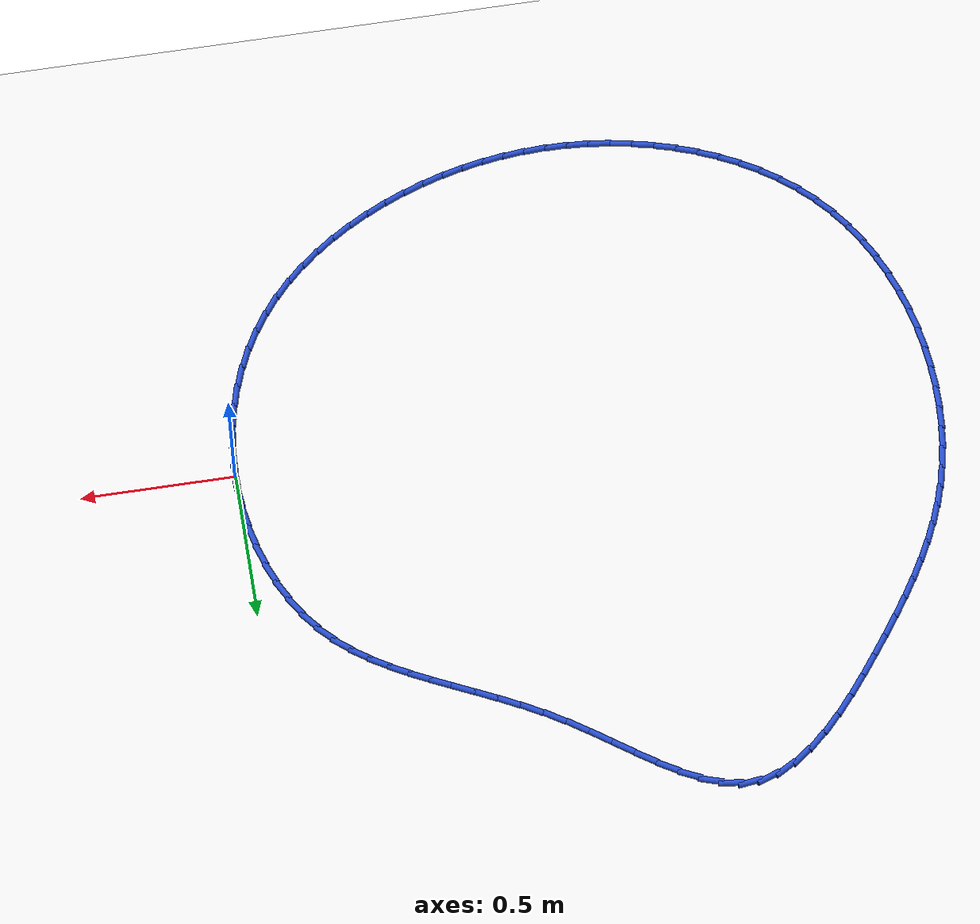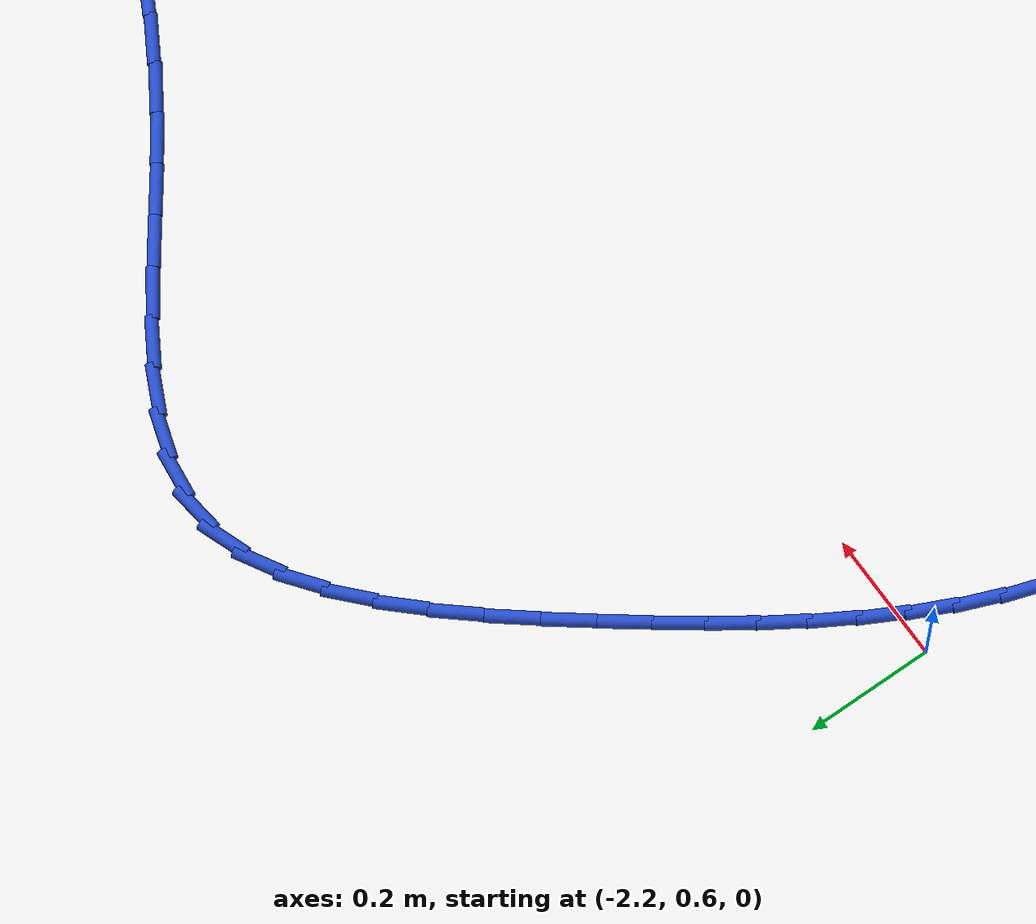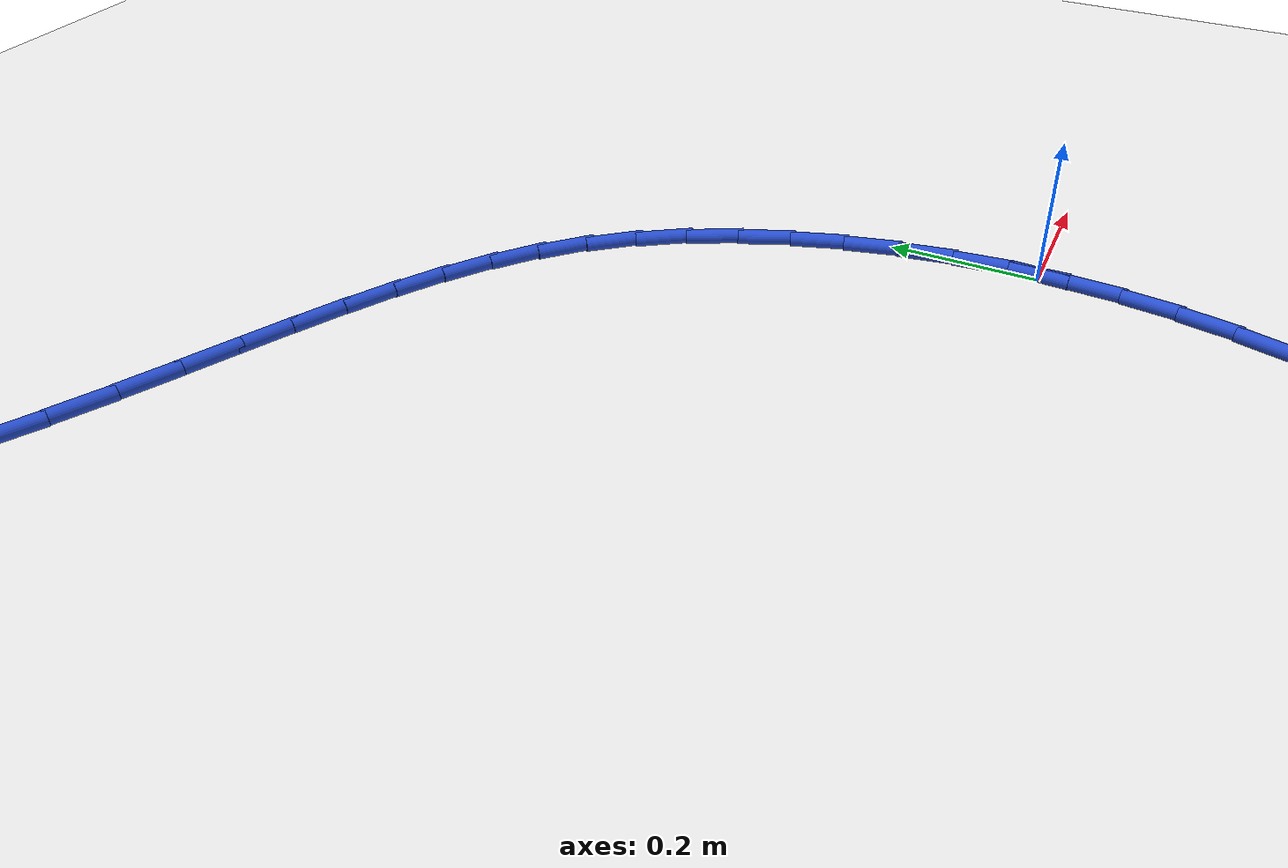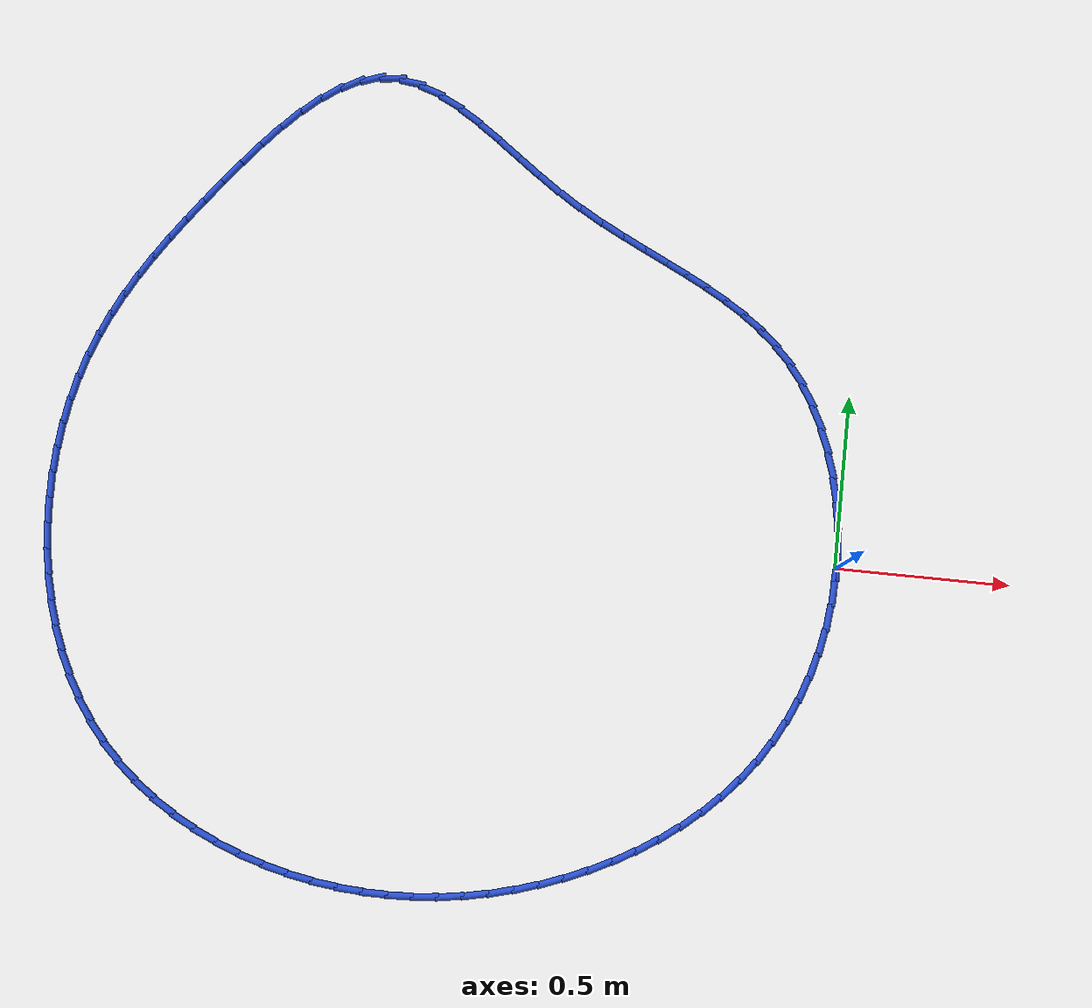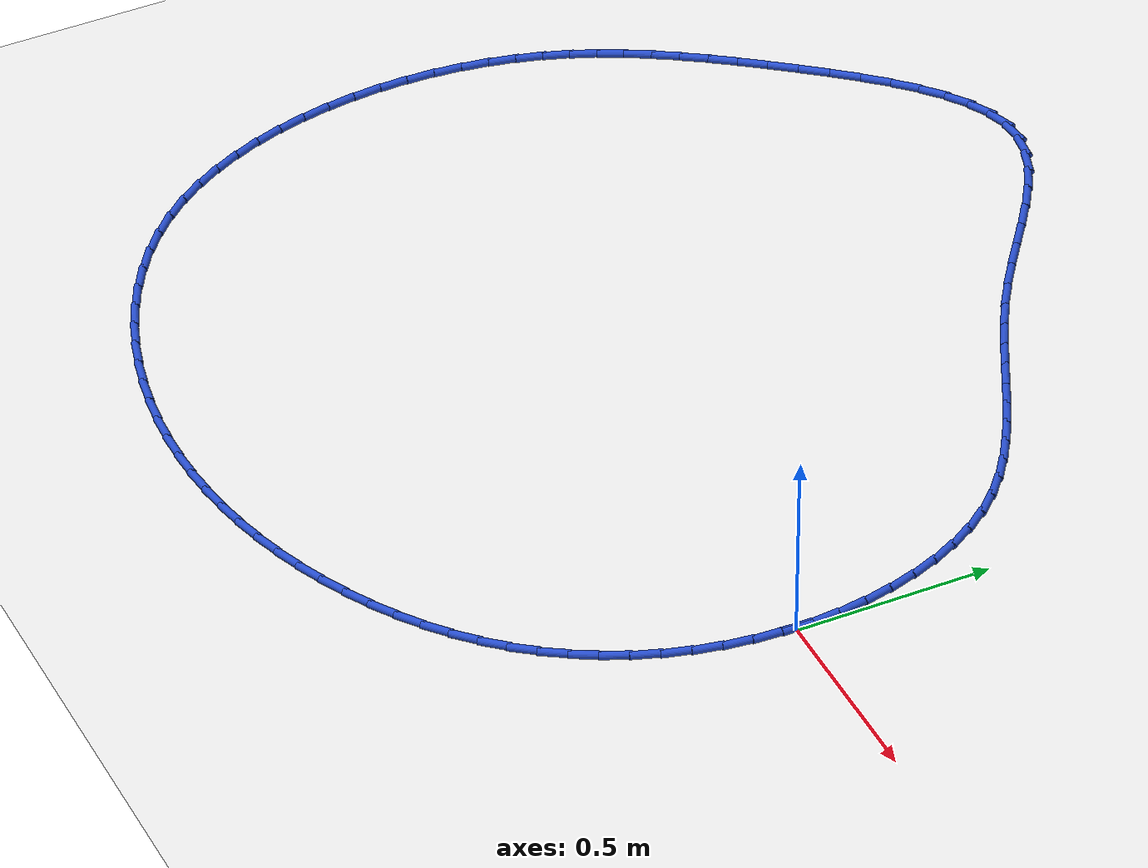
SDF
<sdf version="1.6">
 <world name="default">
  <light name="sun" type="directional">
   <pose>0 0 10 0 -0 0</pose>
   <diffuse>0.8 0.8 0.8 1</diffuse>
   <specular>0.2 0.2 0.2 1</specular>
   <attenuation>
    <range>1000</range>
    <constant>0.9</constant>
    <linear>0.01</linear>
    <quadratic>0.001</quadratic>
   </attenuation>
   <direction>-0.5 0.1 -0.9</direction>
  </light>
  <model name="ground_plane">
   <static>1</static>
   <link name="link">
    <collision name="collision">
     <geometry><plane><normal>0 0 1</normal><size>100 100</size></plane></geometry>
     <surface><friction><ode><mu>100</mu><mu2>50</mu2></ode></friction></surface>
    </collision>
    <visual name="visual">
     <cast_shadows>0</cast_shadows>
     <geometry><plane><normal>0 0 1</normal><size>100 100</size></plane></geometry>
     <material>
      <script><uri>file://media/materials/scripts/gazebo.material</uri><name>Gazebo/WhiteGlow</name></script>
     </material>
    </visual>
   </link>
  </model>
  <gravity>0 0 -9.8</gravity>
  <magnetic_field>6e-06 2.3e-05 -4.2e-05</magnetic_field>
  <atmosphere type="adiabatic"/>
  <physics name="default_physics" default="0" type="ode">
   <max_step_size>0.001</max_step_size>
   <real_time_factor>1</real_time_factor>
   <real_time_update_rate>1000</real_time_update_rate>
  </physics>
  <scene><ambient>0.4 0.4 0.4 1</ambient><background>0.7 0.7 0.7 1</background><shadows>1</shadows></scene>
  <spherical_coordinates>
   <surface_model>EARTH_WGS84</surface_model>
   <latitude_deg>0</latitude_deg>
   <longitude_deg>0</longitude_deg>
   <elevation>0</elevation>
   <heading_deg>0</heading_deg>
  </spherical_coordinates>
  <model name="line">
   <link name="link_0">
    <pose>2.7755575615628914e-17 1.3877787807814457e-16 0.01 0 1.57 -1.538912430316013</pose>
    <collision name="collision">
     <geometry><cylinder><radius>0.01</radius><length>0.08</length></cylinder></geometry>
    </collision>
    <visual name="visual">
     <material>
      <script><name>Gazebo/Blue</name><uri>file://media/materials/scripts/gazebo.material</uri></script>
     </material>
     <geometry><cylinder><radius>0.01</radius><length>0.08</length></cylinder></geometry>
    </visual>
   </link>
   <link name="link_1">
    <pose>-0.0023677185913122466 0.07423547530096399 0.01 0 1.57 -1.469861328703391</pose>
    <collision name="collision">
     <geometry><cylinder><radius>0.01</radius><length>0.08</length></cylinder></geometry>
    </collision>
    <visual name="visual">
     <material>
      <script><name>Gazebo/Blue</name><uri>file://media/materials/scripts/gazebo.material</uri></script>
     </material>
     <geometry><cylinder><radius>0.01</radius><length>0.08</length></cylinder></geometry>
    </visual>
   </link>
   <link name="link_2">
    <pose>-0.009873754870056966 0.14834781400514116 0.01 0 1.57 -1.4004037507478164</pose>
    <collision name="collision">
     <geometry><cylinder><radius>0.01</radius><length>0.08</length></cylinder></geometry>
    </collision>
    <visual name="visual">
     <material>
      <script><name>Gazebo/Blue</name><uri>file://media/materials/scripts/gazebo.material</uri></script>
     </material>
     <geometry><cylinder><radius>0.01</radius><length>0.08</length></cylinder></geometry>
    </visual>
   </link>
   <link name="link_3">
    <pose>-0.022476589014638473 0.22159413157067614 0.01 0 1.57 -1.329121193712151</pose>
    <collision name="collision">
     <geometry><cylinder><radius>0.01</radius><length>0.08</length></cylinder></geometry>
    </collision>
    <visual name="visual">
     <material>
      <script><name>Gazebo/Blue</name><uri>file://media/materials/scripts/gazebo.material</uri></script>
     </material>
     <geometry><cylinder><radius>0.01</radius><length>0.08</length></cylinder></geometry>
    </visual>
   </link>
   <link name="link_4">
    <pose>-0.040134701203461125 0.293231543455713 0.01 0 1.57 -1.254554836497659</pose>
    <collision name="collision">
     <geometry><cylinder><radius>0.01</radius><length>0.08</length></cylinder></geometry>
    </collision>
    <visual name="visual">
     <material>
      <script><name>Gazebo/Blue</name><uri>file://media/materials/scripts/gazebo.material</uri></script>
     </material>
     <geometry><cylinder><radius>0.01</radius><length>0.08</length></cylinder></geometry>
    </visual>
   </link>
   <link name="link_5">
    <pose>-0.0628065716149292 0.36251716511839593 0.01 0 1.57 -1.1751745784736398</pose>
    <collision name="collision">
     <geometry><cylinder><radius>0.01</radius><length>0.08</length></cylinder></geometry>
    </collision>
    <visual name="visual">
     <material>
      <script><name>Gazebo/Blue</name><uri>file://media/materials/scripts/gazebo.material</uri></script>
     </material>
     <geometry><cylinder><radius>0.01</radius><length>0.08</length></cylinder></geometry>
    </visual>
   </link>
   <link name="link_6">
    <pose>-0.09045068042744714 0.4287081120168696 0.01 0 1.57 -1.0893718603368352</pose>
    <collision name="collision">
     <geometry><cylinder><radius>0.01</radius><length>0.08</length></cylinder></geometry>
    </collision>
    <visual name="visual">
     <material>
      <script><name>Gazebo/Blue</name><uri>file://media/materials/scripts/gazebo.material</uri></script>
     </material>
     <geometry><cylinder><radius>0.01</radius><length>0.08</length></cylinder></geometry>
    </visual>
   </link>
   <link name="link_7">
    <pose>-0.12302550781941925 0.491061499609278 0.01 0 1.57 -0.9954973646233668</pose>
    <collision name="collision">
     <geometry><cylinder><radius>0.01</radius><length>0.08</length></cylinder></geometry>
    </collision>
    <visual name="visual">
     <material>
      <script><name>Gazebo/Blue</name><uri>file://media/materials/scripts/gazebo.material</uri></script>
     </material>
     <geometry><cylinder><radius>0.01</radius><length>0.08</length></cylinder></geometry>
    </visual>
   </link>
   <link name="link_8">
    <pose>-0.16048953396924984 0.5488344433537652 0.01 0 1.57 -0.8920418828315808</pose>
    <collision name="collision">
     <geometry><cylinder><radius>0.01</radius><length>0.08</length></cylinder></geometry>
    </collision>
    <visual name="visual">
     <material>
      <script><name>Gazebo/Blue</name><uri>file://media/materials/scripts/gazebo.material</uri></script>
     </material>
     <geometry><cylinder><radius>0.01</radius><length>0.08</length></cylinder></geometry>
    </visual>
   </link>
   <link name="link_9">
    <pose>-0.20279978829363898 0.6012892871465709 0.01 0 1.57 -0.7850305552095547</pose>
    <collision name="collision">
     <geometry><cylinder><radius>0.01</radius><length>0.08</length></cylinder></geometry>
    </collision>
    <visual name="visual">
     <material>
      <script><name>Gazebo/Blue</name><uri>file://media/materials/scripts/gazebo.material</uri></script>
     </material>
     <geometry><cylinder><radius>0.01</radius><length>0.08</length></cylinder></geometry>
    </visual>
   </link>
   <link name="link_10">
    <pose>-0.24976562042700082 0.6482206019183557 0.01 0 1.57 -0.6895764350353173</pose>
    <collision name="collision">
     <geometry><cylinder><radius>0.01</radius><length>0.08</length></cylinder></geometry>
    </collision>
    <visual name="visual">
     <material>
      <script><name>Gazebo/Blue</name><uri>file://media/materials/scripts/gazebo.material</uri></script>
     </material>
     <geometry><cylinder><radius>0.01</radius><length>0.08</length></cylinder></geometry>
    </visual>
   </link>
   <link name="link_11">
    <pose>-0.30092344743591043 0.6904065874278423 0.01 0 1.57 -0.6098135565415645</pose>
    <collision name="collision">
     <geometry><cylinder><radius>0.01</radius><length>0.08</length></cylinder></geometry>
    </collision>
    <visual name="visual">
     <material>
      <script><name>Gazebo/Blue</name><uri>file://media/materials/scripts/gazebo.material</uri></script>
     </material>
     <geometry><cylinder><radius>0.01</radius><length>0.08</length></cylinder></geometry>
    </visual>
   </link>
   <link name="link_12">
    <pose>-0.35578018267844064 0.7287317726213873 0.01 0 1.57 -0.5468703686975429</pose>
    <collision name="collision">
     <geometry><cylinder><radius>0.01</radius><length>0.08</length></cylinder></geometry>
    </collision>
    <visual name="visual">
     <material>
      <script><name>Gazebo/Blue</name><uri>file://media/materials/scripts/gazebo.material</uri></script>
     </material>
     <geometry><cylinder><radius>0.01</radius><length>0.08</length></cylinder></geometry>
    </visual>
   </link>
   <link name="link_13">
    <pose>-0.41384273951266465 0.7640806864453484 0.01 0 1.57 -0.5007027555297154</pose>
    <collision name="collision">
     <geometry><cylinder><radius>0.01</radius><length>0.08</length></cylinder></geometry>
    </collision>
    <visual name="visual">
     <material>
      <script><name>Gazebo/Blue</name><uri>file://media/materials/scripts/gazebo.material</uri></script>
     </material>
     <geometry><cylinder><radius>0.01</radius><length>0.08</length></cylinder></geometry>
    </visual>
   </link>
   <link name="link_14">
    <pose>-0.4746180312966549 0.7973378578460826 0.01 0 1.57 -0.4706392496163342</pose>
    <collision name="collision">
     <geometry><cylinder><radius>0.01</radius><length>0.08</length></cylinder></geometry>
    </collision>
    <visual name="visual">
     <material>
      <script><name>Gazebo/Blue</name><uri>file://media/materials/scripts/gazebo.material</uri></script>
     </material>
     <geometry><cylinder><radius>0.01</radius><length>0.08</length></cylinder></geometry>
    </visual>
   </link>
   <link name="link_15">
    <pose>-0.5376129713884843 0.8293878157699474 0.01 0 1.57 -0.45578679930813076</pose>
    <collision name="collision">
     <geometry><cylinder><radius>0.01</radius><length>0.08</length></cylinder></geometry>
    </collision>
    <visual name="visual">
     <material>
      <script><name>Gazebo/Blue</name><uri>file://media/materials/scripts/gazebo.material</uri></script>
     </material>
     <geometry><cylinder><radius>0.01</radius><length>0.08</length></cylinder></geometry>
    </visual>
   </link>
   <link name="link_16">
    <pose>-0.6023344731462261 0.8611150891633 0.01 0 1.57 -0.45526321991160984</pose>
    <collision name="collision">
     <geometry><cylinder><radius>0.01</radius><length>0.08</length></cylinder></geometry>
    </collision>
    <visual name="visual">
     <material>
      <script><name>Gazebo/Blue</name><uri>file://media/materials/scripts/gazebo.material</uri></script>
     </material>
     <geometry><cylinder><radius>0.01</radius><length>0.08</length></cylinder></geometry>
    </visual>
   </link>
   <link name="link_17">
    <pose>-0.6682894499279529 0.8934042069724974 0.01 0 1.57 -0.4682884822504535</pose>
    <collision name="collision">
     <geometry><cylinder><radius>0.01</radius><length>0.08</length></cylinder></geometry>
    </collision>
    <visual name="visual">
     <material>
      <script><name>Gazebo/Blue</name><uri>file://media/materials/scripts/gazebo.material</uri></script>
     </material>
     <geometry><cylinder><radius>0.01</radius><length>0.08</length></cylinder></geometry>
    </visual>
   </link>
   <link name="link_18">
    <pose>-0.7349848150917377 0.9271396981438974 0.01 0 1.57 -0.4941769103215511</pose>
    <collision name="collision">
     <geometry><cylinder><radius>0.01</radius><length>0.08</length></cylinder></geometry>
    </collision>
    <visual name="visual">
     <material>
      <script><name>Gazebo/Blue</name><uri>file://media/materials/scripts/gazebo.material</uri></script>
     </material>
     <geometry><cylinder><radius>0.01</radius><length>0.08</length></cylinder></geometry>
    </visual>
   </link>
   <link name="link_19">
    <pose>-0.8019274819956532 0.9632060916238568 0.01 0 1.57 -0.5322626269704742</pose>
    <collision name="collision">
     <geometry><cylinder><radius>0.01</radius><length>0.08</length></cylinder></geometry>
    </collision>
    <visual name="visual">
     <material>
      <script><name>Gazebo/Blue</name><uri>file://media/materials/scripts/gazebo.material</uri></script>
     </material>
     <geometry><cylinder><radius>0.01</radius><length>0.08</length></cylinder></geometry>
    </visual>
   </link>
   <link name="link_20">
    <pose>-0.8686243639977724 1.0024879163587332 0.01 0 1.57 -0.5804899341857637</pose>
    <collision name="collision">
     <geometry><cylinder><radius>0.01</radius><length>0.08</length></cylinder></geometry>
    </collision>
    <visual name="visual">
     <material>
      <script><name>Gazebo/Blue</name><uri>file://media/materials/scripts/gazebo.material</uri></script>
     </material>
     <geometry><cylinder><radius>0.01</radius><length>0.08</length></cylinder></geometry>
    </visual>
   </link>
   <link name="link_21">
    <pose>-0.934601130541921 1.0457600263163553 0.01 0 1.57 -0.619317837488944</pose>
    <collision name="collision">
     <geometry><cylinder><radius>0.01</radius><length>0.08</length></cylinder></geometry>
    </collision>
    <visual name="visual">
     <material>
      <script><name>Gazebo/Blue</name><uri>file://media/materials/scripts/gazebo.material</uri></script>
     </material>
     <geometry><cylinder><radius>0.01</radius><length>0.08</length></cylinder></geometry>
    </visual>
   </link>
   <link name="link_22">
    <pose>-0.9996662500160888 1.092143627228066 0.01 0 1.57 -0.6354887975507653</pose>
    <collision name="collision">
     <geometry><cylinder><radius>0.01</radius><length>0.08</length></cylinder></geometry>
    </collision>
    <visual name="visual">
     <material>
      <script><name>Gazebo/Blue</name><uri>file://media/materials/scripts/gazebo.material</uri></script>
     </material>
     <geometry><cylinder><radius>0.01</radius><length>0.08</length></cylinder></geometry>
    </visual>
   </link>
   <link name="link_23">
    <pose>-1.063846996077152 1.1394804753983272 0.01 0 1.57 -0.6292181826092645</pose>
    <collision name="collision">
     <geometry><cylinder><radius>0.01</radius><length>0.08</length></cylinder></geometry>
    </collision>
    <visual name="visual">
     <material>
      <script><name>Gazebo/Blue</name><uri>file://media/materials/scripts/gazebo.material</uri></script>
     </material>
     <geometry><cylinder><radius>0.01</radius><length>0.08</length></cylinder></geometry>
    </visual>
   </link>
   <link name="link_24">
    <pose>-1.1271763350747077 1.1855790394851309 0.01 0 1.57 -0.5989394171223196</pose>
    <collision name="collision">
     <geometry><cylinder><radius>0.01</radius><length>0.08</length></cylinder></geometry>
    </collision>
    <visual name="visual">
     <material>
      <script><name>Gazebo/Blue</name><uri>file://media/materials/scripts/gazebo.material</uri></script>
     </material>
     <geometry><cylinder><radius>0.01</radius><length>0.08</length></cylinder></geometry>
    </visual>
   </link>
   <link name="link_25">
    <pose>-1.1896872333583528 1.2282477881464702 0.01 0 1.57 -0.5405641933371202</pose>
    <collision name="collision">
     <geometry><cylinder><radius>0.01</radius><length>0.08</length></cylinder></geometry>
    </collision>
    <visual name="visual">
     <material>
      <script><name>Gazebo/Blue</name><uri>file://media/materials/scripts/gazebo.material</uri></script>
     </material>
     <geometry><cylinder><radius>0.01</radius><length>0.08</length></cylinder></geometry>
    </visual>
   </link>
   <link name="link_26">
    <pose>-1.2514126572776834 1.2652951900403357 0.01 0 1.57 -0.4470869955318219</pose>
    <collision name="collision">
     <geometry><cylinder><radius>0.01</radius><length>0.08</length></cylinder></geometry>
    </collision>
    <visual name="visual">
     <material>
      <script><name>Gazebo/Blue</name><uri>file://media/materials/scripts/gazebo.material</uri></script>
     </material>
     <geometry><cylinder><radius>0.01</radius><length>0.08</length></cylinder></geometry>
    </visual>
   </link>
   <link name="link_27">
    <pose>-1.3123855731822958 1.294529713824721 0.01 0 1.57 -0.30893547416393996</pose>
    <collision name="collision">
     <geometry><cylinder><radius>0.01</radius><length>0.08</length></cylinder></geometry>
    </collision>
    <visual name="visual">
     <material>
      <script><name>Gazebo/Blue</name><uri>file://media/materials/scripts/gazebo.material</uri></script>
     </material>
     <geometry><cylinder><radius>0.01</radius><length>0.08</length></cylinder></geometry>
    </visual>
   </link>
   <link name="link_28">
    <pose>-1.3726389474217866 1.3137598281576168 0.01 0 1.57 -0.11754446150627612</pose>
    <collision name="collision">
     <geometry><cylinder><radius>0.01</radius><length>0.08</length></cylinder></geometry>
    </collision>
    <visual name="visual">
     <material>
      <script><name>Gazebo/Blue</name><uri>file://media/materials/scripts/gazebo.material</uri></script>
     </material>
     <geometry><cylinder><radius>0.01</radius><length>0.08</length></cylinder></geometry>
    </visual>
   </link>
   <link name="link_29">
    <pose>-1.4322057463457516 1.3207940016970152 0.01 0 1.57 0.12111285542415408</pose>
    <collision name="collision">
     <geometry><cylinder><radius>0.01</radius><length>0.08</length></cylinder></geometry>
    </collision>
    <visual name="visual">
     <material>
      <script><name>Gazebo/Blue</name><uri>file://media/materials/scripts/gazebo.material</uri></script>
     </material>
     <geometry><cylinder><radius>0.01</radius><length>0.08</length></cylinder></geometry>
    </visual>
   </link>
   <link name="link_30">
    <pose>-1.491109615925788 1.3136248986225667 0.01 0 1.57 0.3471470967508674</pose>
    <collision name="collision">
     <geometry><cylinder><radius>0.01</radius><length>0.08</length></cylinder></geometry>
    </collision>
    <visual name="visual">
     <material>
      <script><name>Gazebo/Blue</name><uri>file://media/materials/scripts/gazebo.material</uri></script>
     </material>
     <geometry><cylinder><radius>0.01</radius><length>0.08</length></cylinder></geometry>
    </visual>
   </link>
   <link name="link_31">
    <pose>-1.5492556683820558 1.2925877261072682 0.01 0 1.57 0.5226293821518915</pose>
    <collision name="collision">
     <geometry><cylinder><radius>0.01</radius><length>0.08</length></cylinder></geometry>
    </collision>
    <visual name="visual">
     <material>
      <script><name>Gazebo/Blue</name><uri>file://media/materials/scripts/gazebo.material</uri></script>
     </material>
     <geometry><cylinder><radius>0.01</radius><length>0.08</length></cylinder></geometry>
    </visual>
   </link>
   <link name="link_32">
    <pose>-1.6064674112647768 1.259630417197268 0.01 0 1.57 0.6528263724901103</pose>
    <collision name="collision">
     <geometry><cylinder><radius>0.01</radius><length>0.08</length></cylinder></geometry>
    </collision>
    <visual name="visual">
     <material>
      <script><name>Gazebo/Blue</name><uri>file://media/materials/scripts/gazebo.material</uri></script>
     </material>
     <geometry><cylinder><radius>0.01</radius><length>0.08</length></cylinder></geometry>
    </visual>
   </link>
   <link name="link_33">
    <pose>-1.6625667417493153 1.2167327302399396 0.01 0 1.57 0.7480292119138476</pose>
    <collision name="collision">
     <geometry><cylinder><radius>0.01</radius><length>0.08</length></cylinder></geometry>
    </collision>
    <visual name="visual">
     <material>
      <script><name>Gazebo/Blue</name><uri>file://media/materials/scripts/gazebo.material</uri></script>
     </material>
     <geometry><cylinder><radius>0.01</radius><length>0.08</length></cylinder></geometry>
    </visual>
   </link>
   <link name="link_34">
    <pose>-1.7173755570110343 1.1658744235826546 0.01 0 1.57 0.8171445366952627</pose>
    <collision name="collision">
     <geometry><cylinder><radius>0.01</radius><length>0.08</length></cylinder></geometry>
    </collision>
    <visual name="visual">
     <material>
      <script><name>Gazebo/Blue</name><uri>file://media/materials/scripts/gazebo.material</uri></script>
     </material>
     <geometry><cylinder><radius>0.01</radius><length>0.08</length></cylinder></geometry>
    </visual>
   </link>
   <link name="link_35">
    <pose>-1.7707157542252974 1.109035255572786 0.01 0 1.57 0.8665003354164525</pose>
    <collision name="collision">
     <geometry><cylinder><radius>0.01</radius><length>0.08</length></cylinder></geometry>
    </collision>
    <visual name="visual">
     <material>
      <script><name>Gazebo/Blue</name><uri>file://media/materials/scripts/gazebo.material</uri></script>
     </material>
     <geometry><cylinder><radius>0.01</radius><length>0.08</length></cylinder></geometry>
    </visual>
   </link>
   <link name="link_36">
    <pose>-1.8224092305674677 1.0481949845577068 0.01 0 1.57 0.9001489201495261</pose>
    <collision name="collision">
     <geometry><cylinder><radius>0.01</radius><length>0.08</length></cylinder></geometry>
    </collision>
    <visual name="visual">
     <material>
      <script><name>Gazebo/Blue</name><uri>file://media/materials/scripts/gazebo.material</uri></script>
     </material>
     <geometry><cylinder><radius>0.01</radius><length>0.08</length></cylinder></geometry>
    </visual>
   </link>
   <link name="link_37">
    <pose>-1.8722778832129097 0.9853333688847884 0.01 0 1.57 0.9203800662870792</pose>
    <collision name="collision">
     <geometry><cylinder><radius>0.01</radius><length>0.08</length></cylinder></geometry>
    </collision>
    <visual name="visual">
     <material>
      <script><name>Gazebo/Blue</name><uri>file://media/materials/scripts/gazebo.material</uri></script>
     </material>
     <geometry><cylinder><radius>0.01</radius><length>0.08</length></cylinder></geometry>
    </visual>
   </link>
   <link name="link_38">
    <pose>-1.920143579192007 0.9224234957405102 0.01 0 1.57 0.933833798194045</pose>
    <collision name="collision">
     <geometry><cylinder><radius>0.01</radius><length>0.08</length></cylinder></geometry>
    </collision>
    <visual name="visual">
     <material>
      <script><name>Gazebo/Blue</name><uri>file://media/materials/scripts/gazebo.material</uri></script>
     </material>
     <geometry><cylinder><radius>0.01</radius><length>0.08</length></cylinder></geometry>
    </visual>
   </link>
   <link name="link_39">
    <pose>-1.9658247504713802 0.8606782639049967 0.01 0 1.57 0.9520066915912592</pose>
    <collision name="collision">
     <geometry><cylinder><radius>0.01</radius><length>0.08</length></cylinder></geometry>
    </collision>
    <visual name="visual">
     <material>
      <script><name>Gazebo/Blue</name><uri>file://media/materials/scripts/gazebo.material</uri></script>
     </material>
     <geometry><cylinder><radius>0.01</radius><length>0.08</length></cylinder></geometry>
    </visual>
   </link>
   <link name="link_40">
    <pose>-2.009133268946774 0.7998588116771731 0.01 0 1.57 0.9765086578184771</pose>
    <collision name="collision">
     <geometry><cylinder><radius>0.01</radius><length>0.08</length></cylinder></geometry>
    </collision>
    <visual name="visual">
     <material>
      <script><name>Gazebo/Blue</name><uri>file://media/materials/scripts/gazebo.material</uri></script>
     </material>
     <geometry><cylinder><radius>0.01</radius><length>0.08</length></cylinder></geometry>
    </visual>
   </link>
   <link name="link_41">
    <pose>-2.0498802681127093 0.7395628672747763 0.01 0 1.57 1.0075806397864873</pose>
    <collision name="collision">
     <geometry><cylinder><radius>0.01</radius><length>0.08</length></cylinder></geometry>
    </collision>
    <visual name="visual">
     <material>
      <script><name>Gazebo/Blue</name><uri>file://media/materials/scripts/gazebo.material</uri></script>
     </material>
     <geometry><cylinder><radius>0.01</radius><length>0.08</length></cylinder></geometry>
    </visual>
   </link>
   <link name="link_42">
    <pose>-2.0878768814637065 0.6793881589155445 0.01 0 1.57 1.0452988141140402</pose>
    <collision name="collision">
     <geometry><cylinder><radius>0.01</radius><length>0.08</length></cylinder></geometry>
    </collision>
    <visual name="visual">
     <material>
      <script><name>Gazebo/Blue</name><uri>file://media/materials/scripts/gazebo.material</uri></script>
     </material>
     <geometry><cylinder><radius>0.01</radius><length>0.08</length></cylinder></geometry>
    </visual>
   </link>
   <link name="link_43">
    <pose>-2.1229342424942885 0.6189324148172151 0.01 0 1.57 1.0895156346948127</pose>
    <collision name="collision">
     <geometry><cylinder><radius>0.01</radius><length>0.08</length></cylinder></geometry>
    </collision>
    <visual name="visual">
     <material>
      <script><name>Gazebo/Blue</name><uri>file://media/materials/scripts/gazebo.material</uri></script>
     </material>
     <geometry><cylinder><radius>0.01</radius><length>0.08</length></cylinder></geometry>
    </visual>
   </link>
   <link name="link_44">
    <pose>-2.154863484698976 0.5577933631975255 0.01 0 1.57 1.1398044742490359</pose>
    <collision name="collision">
     <geometry><cylinder><radius>0.01</radius><length>0.08</length></cylinder></geometry>
    </collision>
    <visual name="visual">
     <material>
      <script><name>Gazebo/Blue</name><uri>file://media/materials/scripts/gazebo.material</uri></script>
     </material>
     <geometry><cylinder><radius>0.01</radius><length>0.08</length></cylinder></geometry>
    </visual>
   </link>
   <link name="link_45">
    <pose>-2.1834757415722903 0.4955687322742138 0.01 0 1.57 1.1954229469880637</pose>
    <collision name="collision">
     <geometry><cylinder><radius>0.01</radius><length>0.08</length></cylinder></geometry>
    </collision>
    <visual name="visual">
     <material>
      <script><name>Gazebo/Blue</name><uri>file://media/materials/scripts/gazebo.material</uri></script>
     </material>
     <geometry><cylinder><radius>0.01</radius><length>0.08</length></cylinder></geometry>
    </visual>
   </link>
   <link name="link_46">
    <pose>-2.208582146608752 0.4318562502650175 0.01 0 1.57 1.2553125216321508</pose>
    <collision name="collision">
     <geometry><cylinder><radius>0.01</radius><length>0.08</length></cylinder></geometry>
    </collision>
    <visual name="visual">
     <material>
      <script><name>Gazebo/Blue</name><uri>file://media/materials/scripts/gazebo.material</uri></script>
     </material>
     <geometry><cylinder><radius>0.01</radius><length>0.08</length></cylinder></geometry>
    </visual>
   </link>
   <link name="link_47">
    <pose>-2.2299938333028853 0.3662536453876745 0.01 0 1.57 1.3180192365360521</pose>
    <collision name="collision">
     <geometry><cylinder><radius>0.01</radius><length>0.08</length></cylinder></geometry>
    </collision>
    <visual name="visual">
     <material>
      <script><name>Gazebo/Blue</name><uri>file://media/materials/scripts/gazebo.material</uri></script>
     </material>
     <geometry><cylinder><radius>0.01</radius><length>0.08</length></cylinder></geometry>
    </visual>
   </link>
   <link name="link_48">
    <pose>-2.2475255517461536 0.2983807446192195 0.01 0 1.57 1.3800151255824535</pose>
    <collision name="collision">
     <geometry><cylinder><radius>0.01</radius><length>0.08</length></cylinder></geometry>
    </collision>
    <visual name="visual">
     <material>
      <script><name>Gazebo/Blue</name><uri>file://media/materials/scripts/gazebo.material</uri></script>
     </material>
     <geometry><cylinder><radius>0.01</radius><length>0.08</length></cylinder></geometry>
    </visual>
   </link>
   <link name="link_49">
    <pose>-2.2610625452170656 0.22828811466141968 0.01 0 1.57 1.43949024825376</pose>
    <collision name="collision">
     <geometry><cylinder><radius>0.01</radius><length>0.08</length></cylinder></geometry>
    </collision>
    <visual name="visual">
     <material>
      <script><name>Gazebo/Blue</name><uri>file://media/materials/scripts/gazebo.material</uri></script>
     </material>
     <geometry><cylinder><radius>0.01</radius><length>0.08</length></cylinder></geometry>
    </visual>
   </link>
   <link name="link_50">
    <pose>-2.2705541478186575 0.1564179411124659 0.01 0 1.57 1.4971793105345514</pose>
    <collision name="collision">
     <geometry><cylinder><radius>0.01</radius><length>0.08</length></cylinder></geometry>
    </collision>
    <visual name="visual">
     <material>
      <script><name>Gazebo/Blue</name><uri>file://media/materials/scripts/gazebo.material</uri></script>
     </material>
     <geometry><cylinder><radius>0.01</radius><length>0.08</length></cylinder></geometry>
    </visual>
   </link>
   <link name="link_51">
    <pose>-2.2759520261382438 0.08322666192144454 0.01 0 1.57 1.553840223713351</pose>
    <collision name="collision">
     <geometry><cylinder><radius>0.01</radius><length>0.08</length></cylinder></geometry>
    </collision>
    <visual name="visual">
     <material>
      <script><name>Gazebo/Blue</name><uri>file://media/materials/scripts/gazebo.material</uri></script>
     </material>
     <geometry><cylinder><radius>0.01</radius><length>0.08</length></cylinder></geometry>
    </visual>
   </link>
   <link name="link_52">
    <pose>-2.277207846763142 0.009170715037441936 0.01 0 1.57 -1.5314075519483807</pose>
    <collision name="collision">
     <geometry><cylinder><radius>0.01</radius><length>0.08</length></cylinder></geometry>
    </collision>
    <visual name="visual">
     <material>
      <script><name>Gazebo/Blue</name><uri>file://media/materials/scripts/gazebo.material</uri></script>
     </material>
     <geometry><cylinder><radius>0.01</radius><length>0.08</length></cylinder></geometry>
    </visual>
   </link>
   <link name="link_53">
    <pose>-2.2742732762806686 -0.06529346159045543 0.01 0 1.57 -1.4746986702096174</pose>
    <collision name="collision">
     <geometry><cylinder><radius>0.01</radius><length>0.08</length></cylinder></geometry>
    </collision>
    <visual name="visual">
     <material>
      <script><name>Gazebo/Blue</name><uri>file://media/materials/scripts/gazebo.material</uri></script>
     </material>
     <geometry><cylinder><radius>0.01</radius><length>0.08</length></cylinder></geometry>
    </visual>
   </link>
   <link name="link_54">
    <pose>-2.26709998127814 -0.13970943001316116 0.01 0 1.57 -1.4169658833350138</pose>
    <collision name="collision">
     <geometry><cylinder><radius>0.01</radius><length>0.08</length></cylinder></geometry>
    </collision>
    <visual name="visual">
     <material>
      <script><name>Gazebo/Blue</name><uri>file://media/materials/scripts/gazebo.material</uri></script>
     </material>
     <geometry><cylinder><radius>0.01</radius><length>0.08</length></cylinder></geometry>
    </visual>
   </link>
   <link name="link_55">
    <pose>-2.2556396283428732 -0.21362075228158875 0.01 0 1.57 -1.357560463263322</pose>
    <collision name="collision">
     <geometry><cylinder><radius>0.01</radius><length>0.08</length></cylinder></geometry>
    </collision>
    <visual name="visual">
     <material>
      <script><name>Gazebo/Blue</name><uri>file://media/materials/scripts/gazebo.material</uri></script>
     </material>
     <geometry><cylinder><radius>0.01</radius><length>0.08</length></cylinder></geometry>
    </visual>
   </link>
   <link name="link_56">
    <pose>-2.2398438840621835 -0.28657099044665185 0.01 0 1.57 -1.2958401948618161</pose>
    <collision name="collision">
     <geometry><cylinder><radius>0.01</radius><length>0.08</length></cylinder></geometry>
    </collision>
    <visual name="visual">
     <material>
      <script><name>Gazebo/Blue</name><uri>file://media/materials/scripts/gazebo.material</uri></script>
     </material>
     <geometry><cylinder><radius>0.01</radius><length>0.08</length></cylinder></geometry>
    </visual>
   </link>
   <link name="link_57">
    <pose>-2.21966441502339 -0.3581037065592641 0.01 0 1.57 -1.2311707770391653</pose>
    <collision name="collision">
     <geometry><cylinder><radius>0.01</radius><length>0.08</length></cylinder></geometry>
    </collision>
    <visual name="visual">
     <material>
      <script><name>Gazebo/Blue</name><uri>file://media/materials/scripts/gazebo.material</uri></script>
     </material>
     <geometry><cylinder><radius>0.01</radius><length>0.08</length></cylinder></geometry>
    </visual>
   </link>
   <link name="link_58">
    <pose>-2.1950528878138065 -0.4277624626703381 0.01 0 1.57 -1.1629356386002083</pose>
    <collision name="collision">
     <geometry><cylinder><radius>0.01</radius><length>0.08</length></cylinder></geometry>
    </collision>
    <visual name="visual">
     <material>
      <script><name>Gazebo/Blue</name><uri>file://media/materials/scripts/gazebo.material</uri></script>
     </material>
     <geometry><cylinder><radius>0.01</radius><length>0.08</length></cylinder></geometry>
    </visual>
   </link>
   <link name="link_59">
    <pose>-2.1659609690207513 -0.49509082083078904 0.01 0 1.57 -1.0905570989496458</pose>
    <collision name="collision">
     <geometry><cylinder><radius>0.01</radius><length>0.08</length></cylinder></geometry>
    </collision>
    <visual name="visual">
     <material>
      <script><name>Gazebo/Blue</name><uri>file://media/materials/scripts/gazebo.material</uri></script>
     </material>
     <geometry><cylinder><radius>0.01</radius><length>0.08</length></cylinder></geometry>
    </visual>
   </link>
   <link name="link_60">
    <pose>-2.1323403252315396 -0.5596323430915299 0.01 0 1.57 -1.0135319952777606</pose>
    <collision name="collision">
     <geometry><cylinder><radius>0.01</radius><length>0.08</length></cylinder></geometry>
    </collision>
    <visual name="visual">
     <material>
      <script><name>Gazebo/Blue</name><uri>file://media/materials/scripts/gazebo.material</uri></script>
     </material>
     <geometry><cylinder><radius>0.01</radius><length>0.08</length></cylinder></geometry>
    </visual>
   </link>
   <link name="link_61">
    <pose>-2.09414262303349 -0.6209305915034741 0.01 0 1.57 -0.9314840677207193</pose>
    <collision name="collision">
     <geometry><cylinder><radius>0.01</radius><length>0.08</length></cylinder></geometry>
    </collision>
    <visual name="visual">
     <material>
      <script><name>Gazebo/Blue</name><uri>file://media/materials/scripts/gazebo.material</uri></script>
     </material>
     <geometry><cylinder><radius>0.01</radius><length>0.08</length></cylinder></geometry>
    </visual>
   </link>
   <link name="link_62">
    <pose>-2.051319529013916 -0.678529128117535 0.01 0 1.57 -0.8449378033091512</pose>
    <collision name="collision">
     <geometry><cylinder><radius>0.01</radius><length>0.08</length></cylinder></geometry>
    </collision>
    <visual name="visual">
     <material>
      <script><name>Gazebo/Blue</name><uri>file://media/materials/scripts/gazebo.material</uri></script>
     </material>
     <geometry><cylinder><radius>0.01</radius><length>0.08</length></cylinder></geometry>
    </visual>
   </link>
   <link name="link_63">
    <pose>-2.003858589252144 -0.7320070425901165 0.01 0 1.57 -0.7598026993595357</pose>
    <collision name="collision">
     <geometry><cylinder><radius>0.01</radius><length>0.08</length></cylinder></geometry>
    </collision>
    <visual name="visual">
     <material>
      <script><name>Gazebo/Blue</name><uri>file://media/materials/scripts/gazebo.material</uri></script>
     </material>
     <geometry><cylinder><radius>0.01</radius><length>0.08</length></cylinder></geometry>
    </visual>
   </link>
   <link name="link_64">
    <pose>-1.9520428015988236 -0.7812359787188797 0.01 0 1.57 -0.6791181383738347</pose>
    <collision name="collision">
     <geometry><cylinder><radius>0.01</radius><length>0.08</length></cylinder></geometry>
    </collision>
    <visual name="visual">
     <material>
      <script><name>Gazebo/Blue</name><uri>file://media/materials/scripts/gazebo.material</uri></script>
     </material>
     <geometry><cylinder><radius>0.01</radius><length>0.08</length></cylinder></geometry>
    </visual>
   </link>
   <link name="link_65">
    <pose>-1.8963004385169102 -0.8262314301395097 0.01 0 1.57 -0.602873972599043</pose>
    <collision name="collision">
     <geometry><cylinder><radius>0.01</radius><length>0.08</length></cylinder></geometry>
    </collision>
    <visual name="visual">
     <material>
      <script><name>Gazebo/Blue</name><uri>file://media/materials/scripts/gazebo.material</uri></script>
     </material>
     <geometry><cylinder><radius>0.01</radius><length>0.08</length></cylinder></geometry>
    </visual>
   </link>
   <link name="link_66">
    <pose>-1.8370607829647239 -0.8670098910726697 0.01 0 1.57 -0.5308460025201068</pose>
    <collision name="collision">
     <geometry><cylinder><radius>0.01</radius><length>0.08</length></cylinder></geometry>
    </collision>
    <visual name="visual">
     <material>
      <script><name>Gazebo/Blue</name><uri>file://media/materials/scripts/gazebo.material</uri></script>
     </material>
     <geometry><cylinder><radius>0.01</radius><length>0.08</length></cylinder></geometry>
    </visual>
   </link>
   <link name="link_67">
    <pose>-1.7747531179005855 -0.9035878557390229 0.01 0 1.57 -0.4626711501646479</pose>
    <collision name="collision">
     <geometry><cylinder><radius>0.01</radius><length>0.08</length></cylinder></geometry>
    </collision>
    <visual name="visual">
     <material>
      <script><name>Gazebo/Blue</name><uri>file://media/materials/scripts/gazebo.material</uri></script>
     </material>
     <geometry><cylinder><radius>0.01</radius><length>0.08</length></cylinder></geometry>
    </visual>
   </link>
   <link name="link_68">
    <pose>-1.7098067262828176 -0.9359818183592336 0.01 0 1.57 -0.39789382816561675</pose>
    <collision name="collision">
     <geometry><cylinder><radius>0.01</radius><length>0.08</length></cylinder></geometry>
    </collision>
    <visual name="visual">
     <material>
      <script><name>Gazebo/Blue</name><uri>file://media/materials/scripts/gazebo.material</uri></script>
     </material>
     <geometry><cylinder><radius>0.01</radius><length>0.08</length></cylinder></geometry>
    </visual>
   </link>
   <link name="link_69">
    <pose>-1.6426508910697408 -0.9642082731539643 0.01 0 1.57 -0.33600062430584104</pose>
    <collision name="collision">
     <geometry><cylinder><radius>0.01</radius><length>0.08</length></cylinder></geometry>
    </collision>
    <visual name="visual">
     <material>
      <script><name>Gazebo/Blue</name><uri>file://media/materials/scripts/gazebo.material</uri></script>
     </material>
     <geometry><cylinder><radius>0.01</radius><length>0.08</length></cylinder></geometry>
    </visual>
   </link>
   <link name="link_70">
    <pose>-1.5737148952196758 -0.9882837143438793 0.01 0 1.57 -0.2764434606170924</pose>
    <collision name="collision">
     <geometry><cylinder><radius>0.01</radius><length>0.08</length></cylinder></geometry>
    </collision>
    <visual name="visual">
     <material>
      <script><name>Gazebo/Blue</name><uri>file://media/materials/scripts/gazebo.material</uri></script>
     </material>
     <geometry><cylinder><radius>0.01</radius><length>0.08</length></cylinder></geometry>
    </visual>
   </link>
   <link name="link_71">
    <pose>-1.5034280216909457 -1.0082246361496419 0.01 0 1.57 -0.21865278771470287</pose>
    <collision name="collision">
     <geometry><cylinder><radius>0.01</radius><length>0.08</length></cylinder></geometry>
    </collision>
    <visual name="visual">
     <material>
      <script><name>Gazebo/Blue</name><uri>file://media/materials/scripts/gazebo.material</uri></script>
     </material>
     <geometry><cylinder><radius>0.01</radius><length>0.08</length></cylinder></geometry>
    </visual>
   </link>
   <link name="link_72">
    <pose>-1.4322195534418696 -1.0240475327919154 0.01 0 1.57 -0.16204276995808786</pose>
    <collision name="collision">
     <geometry><cylinder><radius>0.01</radius><length>0.08</length></cylinder></geometry>
    </collision>
    <visual name="visual">
     <material>
      <script><name>Gazebo/Blue</name><uri>file://media/materials/scripts/gazebo.material</uri></script>
     </material>
     <geometry><cylinder><radius>0.01</radius><length>0.08</length></cylinder></geometry>
    </visual>
   </link>
   <link name="link_73">
    <pose>-1.3605187734307695 -1.0357688984913638 0.01 0 1.57 -0.10602909232175602</pose>
    <collision name="collision">
     <geometry><cylinder><radius>0.01</radius><length>0.08</length></cylinder></geometry>
    </collision>
    <visual name="visual">
     <material>
      <script><name>Gazebo/Blue</name><uri>file://media/materials/scripts/gazebo.material</uri></script>
     </material>
     <geometry><cylinder><radius>0.01</radius><length>0.08</length></cylinder></geometry>
    </visual>
   </link>
   <link name="link_74">
    <pose>-1.2887195653201406 -1.0434103603752798 0.01 0 1.57 -0.0503423884025642</pose>
    <collision name="collision">
     <geometry><cylinder><radius>0.01</radius><length>0.08</length></cylinder></geometry>
    </collision>
    <visual name="visual">
     <material>
      <script><name>Gazebo/Blue</name><uri>file://media/materials/scripts/gazebo.material</uri></script>
     </material>
     <geometry><cylinder><radius>0.01</radius><length>0.08</length></cylinder></geometry>
    </visual>
   </link>
   <link name="link_75">
    <pose>-1.2170094135515273 -1.0470234735089226 0.01 0 1.57 0.004934550055123471</pose>
    <collision name="collision">
     <geometry><cylinder><radius>0.01</radius><length>0.08</length></cylinder></geometry>
    </collision>
    <visual name="visual">
     <material>
      <script><name>Gazebo/Blue</name><uri>file://media/materials/scripts/gazebo.material</uri></script>
     </material>
     <geometry><cylinder><radius>0.01</radius><length>0.08</length></cylinder></geometry>
    </visual>
   </link>
   <link name="link_76">
    <pose>-1.1455012037506533 -1.0466706098042515 0.01 0 1.57 0.05971604305548511</pose>
    <collision name="collision">
     <geometry><cylinder><radius>0.01</radius><length>0.08</length></cylinder></geometry>
    </collision>
    <visual name="visual">
     <material>
      <script><name>Gazebo/Blue</name><uri>file://media/materials/scripts/gazebo.material</uri></script>
     </material>
     <geometry><cylinder><radius>0.01</radius><length>0.08</length></cylinder></geometry>
    </visual>
   </link>
   <link name="link_77">
    <pose>-1.074307719755673 -1.0424141559324496 0.01 0 1.57 0.11393313200543329</pose>
    <collision name="collision">
     <geometry><cylinder><radius>0.01</radius><length>0.08</length></cylinder></geometry>
    </collision>
    <visual name="visual">
     <material>
      <script><name>Gazebo/Blue</name><uri>file://media/materials/scripts/gazebo.material</uri></script>
     </material>
     <geometry><cylinder><radius>0.01</radius><length>0.08</length></cylinder></geometry>
    </visual>
   </link>
   <link name="link_78">
    <pose>-1.0035417454047402 -1.034316498564699 0.01 0 1.57 0.16753346377221173</pose>
    <collision name="collision">
     <geometry><cylinder><radius>0.01</radius><length>0.08</length></cylinder></geometry>
    </collision>
    <visual name="visual">
     <material>
      <script><name>Gazebo/Blue</name><uri>file://media/materials/scripts/gazebo.material</uri></script>
     </material>
     <geometry><cylinder><radius>0.01</radius><length>0.08</length></cylinder></geometry>
    </visual>
   </link>
   <link name="link_79">
    <pose>-0.9333160645360091 -1.0224400243721832 0.01 0 1.57 0.22048069031500622</pose>
    <collision name="collision">
     <geometry><cylinder><radius>0.01</radius><length>0.08</length></cylinder></geometry>
    </collision>
    <visual name="visual">
     <material>
      <script><name>Gazebo/Blue</name><uri>file://media/materials/scripts/gazebo.material</uri></script>
     </material>
     <geometry><cylinder><radius>0.01</radius><length>0.08</length></cylinder></geometry>
    </visual>
   </link>
   <link name="link_80">
    <pose>-0.863743460987634 -1.0068471200260836 0.01 0 1.57 0.27275343233225996</pose>
    <collision name="collision">
     <geometry><cylinder><radius>0.01</radius><length>0.08</length></cylinder></geometry>
    </collision>
    <visual name="visual">
     <material>
      <script><name>Gazebo/Blue</name><uri>file://media/materials/scripts/gazebo.material</uri></script>
     </material>
     <geometry><cylinder><radius>0.01</radius><length>0.08</length></cylinder></geometry>
    </visual>
   </link>
   <link name="link_81">
    <pose>-0.7949367185977687 -0.9876001721975839 0.01 0 1.57 0.32434391639418747</pose>
    <collision name="collision">
     <geometry><cylinder><radius>0.01</radius><length>0.08</length></cylinder></geometry>
    </collision>
    <visual name="visual">
     <material>
      <script><name>Gazebo/Blue</name><uri>file://media/materials/scripts/gazebo.material</uri></script>
     </material>
     <geometry><cylinder><radius>0.01</radius><length>0.08</length></cylinder></geometry>
    </visual>
   </link>
   <link name="link_82">
    <pose>-0.7270086212045672 -0.9647615675578657 0.01 0 1.57 0.3752912479381316</pose>
    <collision name="collision">
     <geometry><cylinder><radius>0.01</radius><length>0.08</length></cylinder></geometry>
    </collision>
    <visual name="visual">
     <material>
      <script><name>Gazebo/Blue</name><uri>file://media/materials/scripts/gazebo.material</uri></script>
     </material>
     <geometry><cylinder><radius>0.01</radius><length>0.08</length></cylinder></geometry>
    </visual>
   </link>
   <link name="link_83">
    <pose>-0.6600766825683809 -0.9383928609569305 0.01 0 1.57 0.4266489013928373</pose>
    <collision name="collision">
     <geometry><cylinder><radius>0.01</radius><length>0.08</length></cylinder></geometry>
    </collision>
    <visual name="visual">
     <material>
      <script><name>Gazebo/Blue</name><uri>file://media/materials/scripts/gazebo.material</uri></script>
     </material>
     <geometry><cylinder><radius>0.01</radius><length>0.08</length></cylinder></geometry>
    </visual>
   </link>
   <link name="link_84">
    <pose>-0.5943882318794109 -0.9085327774349348 0.01 0 1.57 0.4798788441168321</pose>
    <collision name="collision">
     <geometry><cylinder><radius>0.01</radius><length>0.08</length></cylinder></geometry>
    </collision>
    <visual name="visual">
     <material>
      <script><name>Gazebo/Blue</name><uri>file://media/materials/scripts/gazebo.material</uri></script>
     </material>
     <geometry><cylinder><radius>0.01</radius><length>0.08</length></cylinder></geometry>
    </visual>
   </link>
   <link name="link_85">
    <pose>-0.5303332961352423 -0.8751949466808016 0.01 0 1.57 0.535530310134695</pose>
    <collision name="collision">
     <geometry><cylinder><radius>0.01</radius><length>0.08</length></cylinder></geometry>
    </collision>
    <visual name="visual">
     <material>
      <script><name>Gazebo/Blue</name><uri>file://media/materials/scripts/gazebo.material</uri></script>
     </material>
     <geometry><cylinder><radius>0.01</radius><length>0.08</length></cylinder></geometry>
    </visual>
   </link>
   <link name="link_86">
    <pose>-0.468309215963685 -0.8383917121820575 0.01 0 1.57 0.5940847300795933</pose>
    <collision name="collision">
     <geometry><cylinder><radius>0.01</radius><length>0.08</length></cylinder></geometry>
    </collision>
    <visual name="visual">
     <material>
      <script><name>Gazebo/Blue</name><uri>file://media/materials/scripts/gazebo.material</uri></script>
     </material>
     <geometry><cylinder><radius>0.01</radius><length>0.08</length></cylinder></geometry>
    </visual>
   </link>
   <link name="link_87">
    <pose>-0.40871333199254883 -0.7981354174262287 0.01 0 1.57 0.6560000373643512</pose>
    <collision name="collision">
     <geometry><cylinder><radius>0.01</radius><length>0.08</length></cylinder></geometry>
    </collision>
    <visual name="visual">
     <material>
      <script><name>Gazebo/Blue</name><uri>file://media/materials/scripts/gazebo.material</uri></script>
     </material>
     <geometry><cylinder><radius>0.01</radius><length>0.08</length></cylinder></geometry>
    </visual>
   </link>
   <link name="link_88">
    <pose>-0.351942984849643 -0.754438405900841 0.01 0 1.57 0.721692859350126</pose>
    <collision name="collision">
     <geometry><cylinder><radius>0.01</radius><length>0.08</length></cylinder></geometry>
    </collision>
    <visual name="visual">
     <material>
      <script><name>Gazebo/Blue</name><uri>file://media/materials/scripts/gazebo.material</uri></script>
     </material>
     <geometry><cylinder><radius>0.01</radius><length>0.08</length></cylinder></geometry>
    </visual>
   </link>
   <link name="link_89">
    <pose>-0.2983955151627772 -0.7073130210934205 0.01 0 1.57 0.7915110677701067</pose>
    <collision name="collision">
     <geometry><cylinder><radius>0.01</radius><length>0.08</length></cylinder></geometry>
    </collision>
    <visual name="visual">
     <material>
      <script><name>Gazebo/Blue</name><uri>file://media/materials/scripts/gazebo.material</uri></script>
     </material>
     <geometry><cylinder><radius>0.01</radius><length>0.08</length></cylinder></geometry>
    </visual>
   </link>
   <link name="link_90">
    <pose>-0.24846826355976082 -0.6567716064914934 0.01 0 1.57 0.86569606573381</pose>
    <collision name="collision">
     <geometry><cylinder><radius>0.01</radius><length>0.08</length></cylinder></geometry>
    </collision>
    <visual name="visual">
     <material>
      <script><name>Gazebo/Blue</name><uri>file://media/materials/scripts/gazebo.material</uri></script>
     </material>
     <geometry><cylinder><radius>0.01</radius><length>0.08</length></cylinder></geometry>
    </visual>
   </link>
   <link name="link_91">
    <pose>-0.20255857066840346 -0.6028265055825858 0.01 0 1.57 0.9439304028793898</pose>
    <collision name="collision">
     <geometry><cylinder><radius>0.01</radius><length>0.08</length></cylinder></geometry>
    </collision>
    <visual name="visual">
     <material>
      <script><name>Gazebo/Blue</name><uri>file://media/materials/scripts/gazebo.material</uri></script>
     </material>
     <geometry><cylinder><radius>0.01</radius><length>0.08</length></cylinder></geometry>
    </visual>
   </link>
   <link name="link_92">
    <pose>-0.16104274283159523 -0.545509969093846 0.01 0 1.57 1.0224227820804104</pose>
    <collision name="collision">
     <geometry><cylinder><radius>0.01</radius><length>0.08</length></cylinder></geometry>
    </collision>
    <visual name="visual">
     <material>
      <script><name>Gazebo/Blue</name><uri>file://media/materials/scripts/gazebo.material</uri></script>
     </material>
     <geometry><cylinder><radius>0.01</radius><length>0.08</length></cylinder></geometry>
    </visual>
   </link>
   <link name="link_93">
    <pose>-0.12410250267081885 -0.48503840541613485 0.01 0 1.57 1.0991827378710777</pose>
    <collision name="collision">
     <geometry><cylinder><radius>0.01</radius><length>0.08</length></cylinder></geometry>
    </collision>
    <visual name="visual">
     <material>
      <script><name>Gazebo/Blue</name><uri>file://media/materials/scripts/gazebo.material</uri></script>
     </material>
     <geometry><cylinder><radius>0.01</radius><length>0.08</length></cylinder></geometry>
    </visual>
   </link>
   <link name="link_94">
    <pose>-0.09181428642916203 -0.4217278679328434 0.01 0 1.57 1.174316159230841</pose>
    <collision name="collision">
     <geometry><cylinder><radius>0.01</radius><length>0.08</length></cylinder></geometry>
    </collision>
    <visual name="visual">
     <material>
      <script><name>Gazebo/Blue</name><uri>file://media/materials/scripts/gazebo.material</uri></script>
     </material>
     <geometry><cylinder><radius>0.01</radius><length>0.08</length></cylinder></geometry>
    </visual>
   </link>
   <link name="link_95">
    <pose>-0.06425349604804025 -0.3558953889097591 0.01 0 1.57 1.2480033286116108</pose>
    <collision name="collision">
     <geometry><cylinder><radius>0.01</radius><length>0.08</length></cylinder></geometry>
    </collision>
    <visual name="visual">
     <material>
      <script><name>Gazebo/Blue</name><uri>file://media/materials/scripts/gazebo.material</uri></script>
     </material>
     <geometry><cylinder><radius>0.01</radius><length>0.08</length></cylinder></geometry>
    </visual>
   </link>
   <link name="link_96">
    <pose>-0.04149553346886926 -0.28785800061266986 0.01 0 1.57 1.3204623086372163</pose>
    <collision name="collision">
     <geometry><cylinder><radius>0.01</radius><length>0.08</length></cylinder></geometry>
    </collision>
    <visual name="visual">
     <material>
      <script><name>Gazebo/Blue</name><uri>file://media/materials/scripts/gazebo.material</uri></script>
     </material>
     <geometry><cylinder><radius>0.01</radius><length>0.08</length></cylinder></geometry>
    </visual>
   </link>
   <link name="link_97">
    <pose>-0.023615800633064055 -0.21793273530736154 0.01 0 1.57 1.3919339606245014</pose>
    <collision name="collision">
     <geometry><cylinder><radius>0.01</radius><length>0.08</length></cylinder></geometry>
    </collision>
    <visual name="visual">
     <material>
      <script><name>Gazebo/Blue</name><uri>file://media/materials/scripts/gazebo.material</uri></script>
     </material>
     <geometry><cylinder><radius>0.01</radius><length>0.08</length></cylinder></geometry>
    </visual>
   </link>
   <link name="link_98">
    <pose>-0.010689699482040438 -0.14643662525962226 0.01 0 1.57 1.4626688278082198</pose>
    <collision name="collision">
     <geometry><cylinder><radius>0.01</radius><length>0.08</length></cylinder></geometry>
    </collision>
    <visual name="visual">
     <material>
      <script><name>Gazebo/Blue</name><uri>file://media/materials/scripts/gazebo.material</uri></script>
     </material>
     <geometry><cylinder><radius>0.01</radius><length>0.08</length></cylinder></geometry>
    </visual>
   </link>
   <link name="link_99">
    <pose>-0.0027926319572138952 -0.0736867027352391 0.01 0 1.57 1.5329157326951206</pose>
    <collision name="collision">
     <geometry><cylinder><radius>0.01</radius><length>0.08</length></cylinder></geometry>
    </collision>
    <visual name="visual">
     <material>
      <script><name>Gazebo/Blue</name><uri>file://media/materials/scripts/gazebo.material</uri></script>
     </material>
     <geometry><cylinder><radius>0.01</radius><length>0.08</length></cylinder></geometry>
    </visual>
   </link>
   <link name="link_100">
    <pose>4.163336342344337e-17 4.0245584642661925e-16 0.01 0 1.57 1.5182132651839548</pose>
    <collision name="collision">
     <geometry><cylinder><radius>0.01</radius><length>0.08</length></cylinder></geometry>
    </collision>
    <visual name="visual">
     <material>
      <script><name>Gazebo/Blue</name><uri>file://media/materials/scripts/gazebo.material</uri></script>
     </material>
     <geometry><cylinder><radius>0.01</radius><length>0.08</length></cylinder></geometry>
    </visual>
   </link>
  </model>
 </world>
</sdf>
